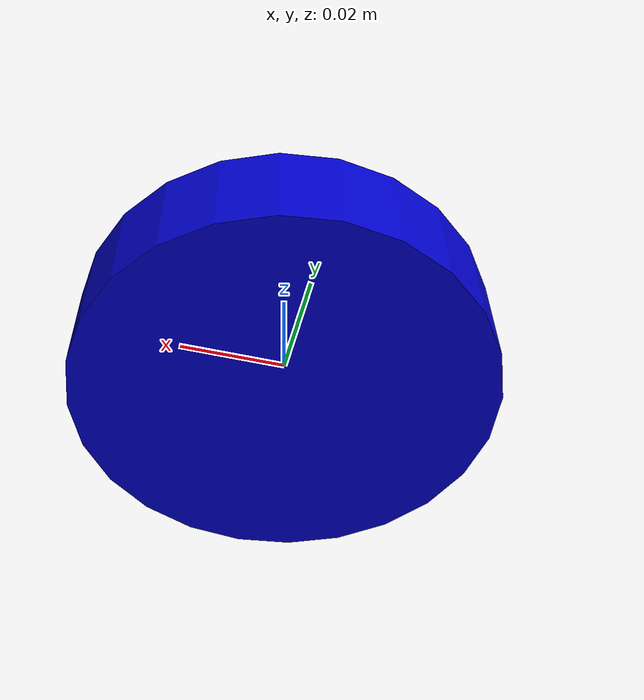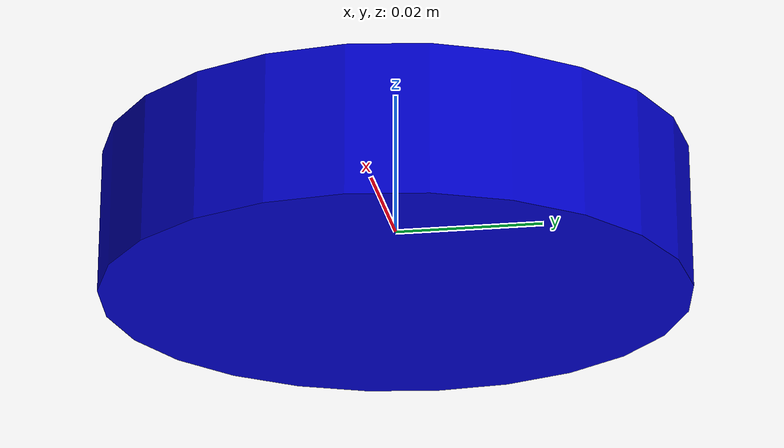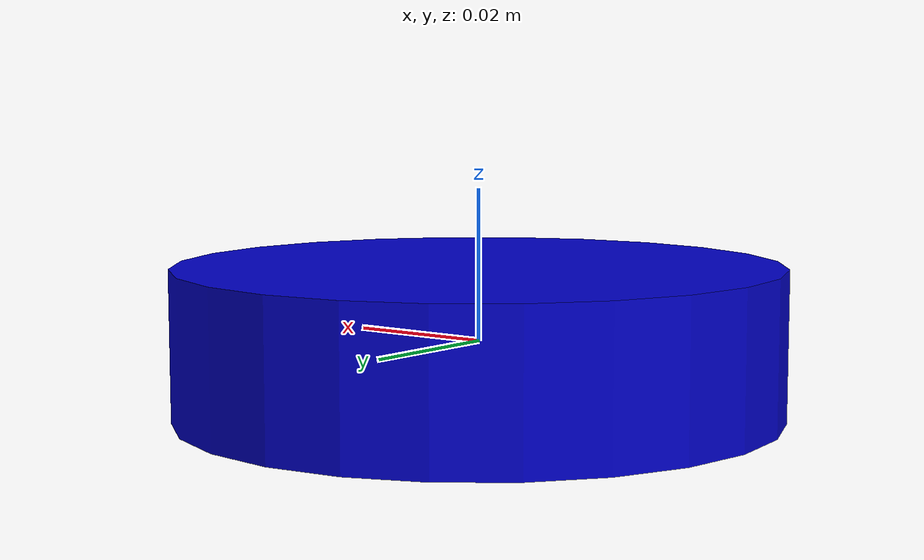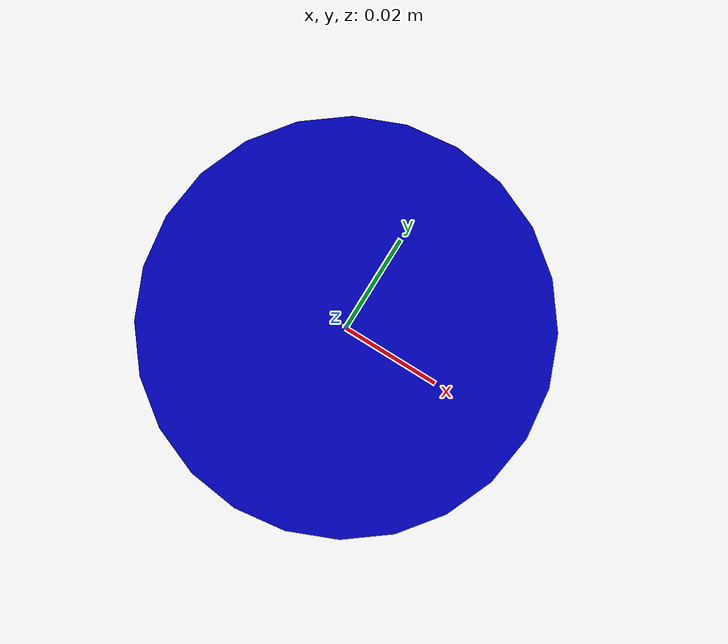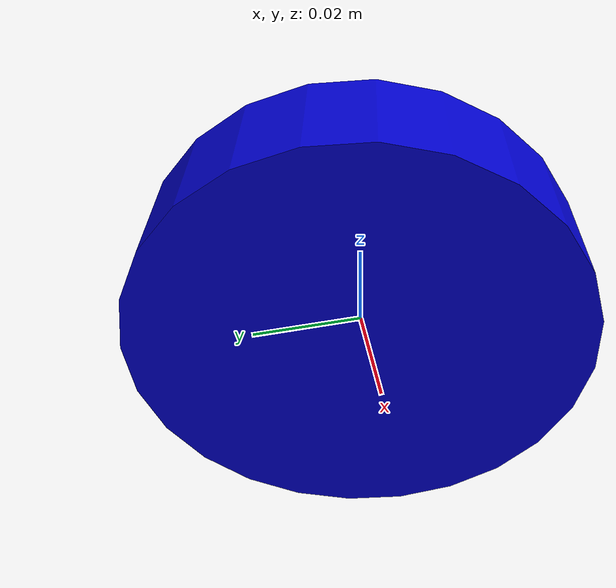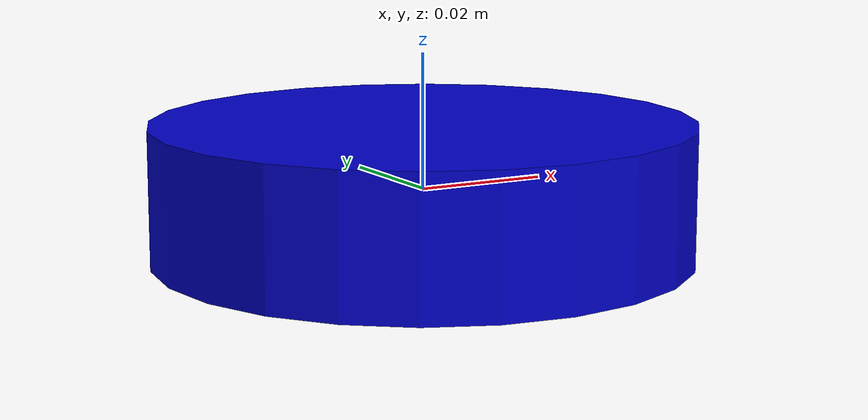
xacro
<?xml version="1.0"?>
<robot xmlns:xacro="http://www.ros.org/wiki/xacro" name="sticky_disc">

	<link name= "vvg">
		<origin rpy="0 0 0 " xyz="0 0 0"/>
		<visual>
			<geometry>
				<cylinder length="0.02" radius="0.04"/>
				<!--box size= "0.2 0.2 0.4"/-->
			</geometry>
			<material name="blue">
				<color rgba="0 0 .8 1"/>
			</material>
		</visual>
		<collision name="vvg_collision">
			<geometry>
				<!--box size= "0.2 0.4 0.4"/-->
              			<cylinder length="0.02" radius="0.04"/>
			</geometry>
		</collision>
		<inertial>
			<mass value="0.01"/>
			<inertia ixx="1.0" ixy="0.0" ixz="0.0" iyy="1.0" iyz="0.0" izz="1.0"/>
  		</inertial>
	</link>

	<gazebo reference="vvg">
		<sensor name="virtual_vacuum_gripper_sticky" type="contact">
			<plugin name="virtual_vacuum_gripper_finger" filename="libsticky_fingers.so">
				<capacity>10</capacity>
			</plugin>
			<contact>
				<collision>vvg_collision</collision>
			</contact>
		</sensor>
	</gazebo>
</robot>
